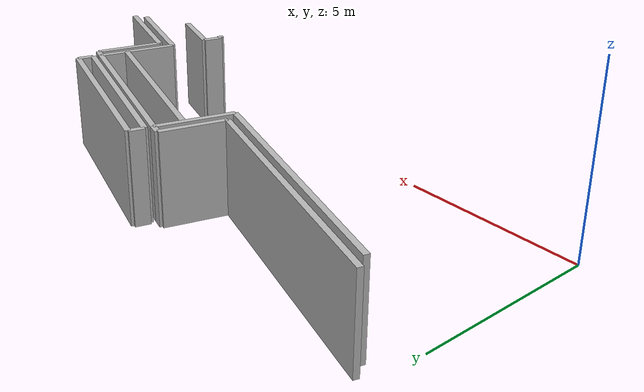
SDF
<?xml version="1.0" ?>
<sdf version="1.6">
  <model name="sps_0501">
    <pose frame="">0 0 0 0 -0 0</pose>
    <static>1</static>
    <self_collide>0</self_collide>
    <allow_auto_disable>0</allow_auto_disable>
    <link name="Wall90">
      <kinematic>0</kinematic>
      <gravity>1</gravity>
      <self_collide>0</self_collide>
      <collision name="collision">
        <geometry>
          <box>
            <size>4.94926 0.15 2.5</size>
          </box>
        </geometry>
        <pose frame="">0 0 0 0 -0 0</pose>
      </collision>
      <visual name="visual">
        <geometry>
          <box>
            <size>4.94926 0.15 2.5</size>
          </box>
        </geometry>
        <pose frame="">0 0 0 0 -0 0</pose>
        <cast_shadows>1</cast_shadows>
        <transparency>0.0</transparency>
      </visual>
      <pose frame="">9.86483 4.52669 1.25 0 0 -0.313514</pose>
    </link>
    <link name="Wall91">
      <kinematic>0</kinematic>
      <gravity>1</gravity>
      <self_collide>0</self_collide>
      <collision name="collision">
        <geometry>
          <box>
            <size>0.405746 0.15 2.5</size>
          </box>
        </geometry>
        <pose frame="">0 0 0 0 -0 0</pose>
      </collision>
      <visual name="visual">
        <geometry>
          <box>
            <size>0.405746 0.15 2.5</size>
          </box>
        </geometry>
        <pose frame="">0 0 0 0 -0 0</pose>
        <cast_shadows>1</cast_shadows>
        <transparency>0.0</transparency>
      </visual>
      <pose frame="">12.5778 4.8343 1.25 0 0 -1.89378</pose>
    </link>
    <link name="Wall483">
      <kinematic>0</kinematic>
      <gravity>1</gravity>
      <self_collide>0</self_collide>
      <collision name="collision">
        <geometry>
          <box>
            <size>4.96503 0.15 2.5</size>
          </box>
        </geometry>
        <pose frame="">0 0 0 0 -0 0</pose>
      </collision>
      <visual name="visual">
        <geometry>
          <box>
            <size>4.96503 0.15 2.5</size>
          </box>
        </geometry>
        <pose frame="">0 0 0 0 -0 0</pose>
        <cast_shadows>1</cast_shadows>
        <transparency>0.0</transparency>
      </visual>
      <pose frame="">10.1519 5.40752 1.25 0 0 -0.313505</pose>
    </link>
    <link name="Wall484">
      <kinematic>0</kinematic>
      <gravity>1</gravity>
      <self_collide>0</self_collide>
      <collision name="collision">
        <geometry>
          <box>
            <size>1.51377 0.15 2.5</size>
          </box>
        </geometry>
        <pose frame="">0 0 0 0 -0 0</pose>
      </collision>
      <visual name="visual">
        <geometry>
          <box>
            <size>1.51377 0.15 2.5</size>
          </box>
        </geometry>
        <pose frame="">0 0 0 0 -0 0</pose>
        <cast_shadows>1</cast_shadows>
        <transparency>0.0</transparency>
      </visual>
      <pose frame="">12.3254 1.37831 1.25 0 0 -0.313476</pose>
    </link>
    <link name="Wall809">
      <kinematic>0</kinematic>
      <gravity>1</gravity>
      <self_collide>0</self_collide>
      <collision name="collision">
        <geometry>
          <box>
            <size>1.69606 0.15 2.5</size>
          </box>
        </geometry>
        <pose frame="">0 0 0 0 -0 0</pose>
      </collision>
      <visual name="visual">
        <geometry>
          <box>
            <size>1.69606 0.15 2.5</size>
          </box>
        </geometry>
        <pose frame="">0 0 0 0 -0 0</pose>
        <cast_shadows>1</cast_shadows>
        <transparency>0.0</transparency>
      </visual>
      <pose frame="">7.17858 5.25398 1.25 0 -0 1.25732</pose>
    </link>
    <link name="Wall811">
      <kinematic>0</kinematic>
      <gravity>1</gravity>
      <self_collide>0</self_collide>
      <collision name="collision">
        <geometry>
          <box>
            <size>0.305144 0.15 2.5</size>
          </box>
        </geometry>
        <pose frame="">0 0 0 0 -0 0</pose>
      </collision>
      <visual name="visual">
        <geometry>
          <box>
            <size>0.305144 0.15 2.5</size>
          </box>
        </geometry>
        <pose frame="">0 0 0 0 -0 0</pose>
        <cast_shadows>1</cast_shadows>
        <transparency>0.0</transparency>
      </visual>
      <pose frame="">7.58626 6.01698 1.25 0 0 -0.290499</pose>
    </link>
    <link name="Wall813">
      <kinematic>0</kinematic>
      <gravity>1</gravity>
      <self_collide>0</self_collide>
      <collision name="collision">
        <geometry>
          <box>
            <size>0.395452 0.15 2.5</size>
          </box>
        </geometry>
        <pose frame="">0 0 0 0 -0 0</pose>
      </collision>
      <visual name="visual">
        <geometry>
          <box>
            <size>0.395452 0.15 2.5</size>
          </box>
        </geometry>
        <pose frame="">0 0 0 0 -0 0</pose>
        <cast_shadows>1</cast_shadows>
        <transparency>0.0</transparency>
      </visual>
      <pose frame="">7.85143 6.36119 1.25 0 0 -1.88444</pose>
    </link>
    <link name="Wall816">
      <kinematic>0</kinematic>
      <gravity>1</gravity>
      <self_collide>0</self_collide>
      <collision name="collision">
        <geometry>
          <box>
            <size>0.13791 0.15 2.5</size>
          </box>
        </geometry>
        <pose frame="">0 0 0 0 -0 0</pose>
      </collision>
      <visual name="visual">
        <geometry>
          <box>
            <size>0.13791 0.15 2.5</size>
          </box>
        </geometry>
        <pose frame="">0 0 0 0 -0 0</pose>
        <cast_shadows>1</cast_shadows>
        <transparency>0.0</transparency>
      </visual>
      <pose frame="">11.5195 1.12257 1.25 0 0 -0.314053</pose>
    </link>
    <link name="Wall1216">
      <kinematic>0</kinematic>
      <gravity>1</gravity>
      <self_collide>0</self_collide>
      <collision name="collision">
        <geometry>
          <box>
            <size>1.70277 0.15 2.5</size>
          </box>
        </geometry>
        <pose frame="">0 0 0 0 -0 0</pose>
      </collision>
      <visual name="visual">
        <geometry>
          <box>
            <size>1.70277 0.15 2.5</size>
          </box>
        </geometry>
        <pose frame="">0 0 0 0 -0 0</pose>
        <cast_shadows>1</cast_shadows>
        <transparency>0.0</transparency>
      </visual>
      <pose frame="">12.4652 3.52757 1.25 0 0 -1.88424</pose>
    </link>
    <link name="Wall1831">
      <kinematic>0</kinematic>
      <gravity>1</gravity>
      <self_collide>0</self_collide>
      <collision name="collision">
        <geometry>
          <box>
            <size>0.491769 0.15 2.5</size>
          </box>
        </geometry>
        <pose frame="">0 0 0 0 -0 0</pose>
      </collision>
      <visual name="visual">
        <geometry>
          <box>
            <size>0.491769 0.15 2.5</size>
          </box>
        </geometry>
        <pose frame="">0 0 0 0 -0 0</pose>
        <cast_shadows>1</cast_shadows>
        <transparency>0.0</transparency>
      </visual>
      <pose frame="">11.5297 1.37779 1.25 0 0 -1.88407</pose>
    </link>
    <link name="Wall1832">
      <kinematic>0</kinematic>
      <gravity>1</gravity>
      <self_collide>0</self_collide>
      <collision name="collision">
        <geometry>
          <box>
            <size>4.9568 0.15 2.5</size>
          </box>
        </geometry>
        <pose frame="">0 0 0 0 -0 0</pose>
      </collision>
      <visual name="visual">
        <geometry>
          <box>
            <size>4.9568 0.15 2.5</size>
          </box>
        </geometry>
        <pose frame="">0 0 0 0 -0 0</pose>
        <cast_shadows>1</cast_shadows>
        <transparency>0.0</transparency>
      </visual>
      <pose frame="">10.0896 5.20747 1.25 0 0 -0.314134</pose>
    </link>
    <link name="Wall1833">
      <kinematic>0</kinematic>
      <gravity>1</gravity>
      <self_collide>0</self_collide>
      <collision name="collision">
        <geometry>
          <box>
            <size>0.299699 0.15 2.5</size>
          </box>
        </geometry>
        <pose frame="">0 0 0 0 -0 0</pose>
      </collision>
      <visual name="visual">
        <geometry>
          <box>
            <size>0.299699 0.15 2.5</size>
          </box>
        </geometry>
        <pose frame="">0 0 0 0 -0 0</pose>
        <cast_shadows>1</cast_shadows>
        <transparency>0.0</transparency>
      </visual>
      <pose frame="">12.5872 4.38957 1.25 0 0 -0.355052</pose>
    </link>
    <link name="Wall2174">
      <kinematic>0</kinematic>
      <gravity>1</gravity>
      <self_collide>0</self_collide>
      <collision name="collision">
        <geometry>
          <box>
            <size>4.96883 0.15 2.5</size>
          </box>
        </geometry>
        <pose frame="">0 0 0 0 -0 0</pose>
      </collision>
      <visual name="visual">
        <geometry>
          <box>
            <size>4.96883 0.15 2.5</size>
          </box>
        </geometry>
        <pose frame="">0 0 0 0 -0 0</pose>
        <cast_shadows>1</cast_shadows>
        <transparency>0.0</transparency>
      </visual>
      <pose frame="">10.2773 5.78798 1.25 0 0 -0.311437</pose>
    </link>
    <link name="Wall2176">
      <kinematic>0</kinematic>
      <gravity>1</gravity>
      <self_collide>0</self_collide>
      <collision name="collision">
        <geometry>
          <box>
            <size>2.52068 0.15 2.5</size>
          </box>
        </geometry>
        <pose frame="">0 0 0 0 -0 0</pose>
      </collision>
      <visual name="visual">
        <geometry>
          <box>
            <size>2.52068 0.15 2.5</size>
          </box>
        </geometry>
        <pose frame="">0 0 0 0 -0 0</pose>
        <cast_shadows>1</cast_shadows>
        <transparency>0.0</transparency>
      </visual>
      <pose frame="">13.4016 2.32899 1.25 0 0 -0.313496</pose>
    </link>
    <link name="Wall2562">
      <kinematic>0</kinematic>
      <gravity>1</gravity>
      <self_collide>0</self_collide>
      <collision name="collision">
        <geometry>
          <box>
            <size>1.99967 0.15 2.5</size>
          </box>
        </geometry>
        <pose frame="">0 0 0 0 -0 0</pose>
      </collision>
      <visual name="visual">
        <geometry>
          <box>
            <size>1.99967 0.15 2.5</size>
          </box>
        </geometry>
        <pose frame="">0 0 0 0 -0 0</pose>
        <cast_shadows>1</cast_shadows>
        <transparency>0.0</transparency>
      </visual>
      <pose frame="">12.1383 3.49058 1.25 0 0 -1.88437</pose>
    </link>
    <link name="Wall19121">
      <kinematic>0</kinematic>
      <gravity>1</gravity>
      <self_collide>0</self_collide>
      <collision name="collision">
        <geometry>
          <box>
            <size>6.8972 0.15 2.5</size>
          </box>
        </geometry>
        <pose frame="">0 0 0 0 -0 0</pose>
      </collision>
      <visual name="visual">
        <geometry>
          <box>
            <size>6.8972 0.15 2.5</size>
          </box>
        </geometry>
        <pose frame="">0 0 0 0 -0 0</pose>
        <cast_shadows>1</cast_shadows>
        <transparency>0.0</transparency>
      </visual>
      <pose frame="">3.83517 5.13438 1.25 0 0 -0.313498</pose>
    </link>
    <link name="Wall19122">
      <kinematic>0</kinematic>
      <gravity>1</gravity>
      <self_collide>0</self_collide>
      <collision name="collision">
        <geometry>
          <box>
            <size>1.99988 0.15 2.5</size>
          </box>
        </geometry>
        <pose frame="">0 0 0 0 -0 0</pose>
      </collision>
      <visual name="visual">
        <geometry>
          <box>
            <size>1.99988 0.15 2.5</size>
          </box>
        </geometry>
        <pose frame="">0 0 0 0 -0 0</pose>
        <cast_shadows>1</cast_shadows>
        <transparency>0.0</transparency>
      </visual>
      <pose frame="">7.42406 5.02208 1.25 0 -0 1.25729</pose>
    </link>
    <link name="Wall27761">
      <kinematic>0</kinematic>
      <gravity>1</gravity>
      <self_collide>0</self_collide>
      <collision name="collision">
        <geometry>
          <box>
            <size>6.93258 0.15 2.5</size>
          </box>
        </geometry>
        <pose frame="">0 0 0 0 -0 0</pose>
      </collision>
      <visual name="visual">
        <geometry>
          <box>
            <size>6.93258 0.15 2.5</size>
          </box>
        </geometry>
        <pose frame="">0 0 0 0 -0 0</pose>
        <cast_shadows>1</cast_shadows>
        <transparency>0.0</transparency>
      </visual>
      <pose frame="">3.61977 5.51637 1.25 0 0 -0.313537</pose>
    </link>
    <link name="Wall27774">
      <kinematic>0</kinematic>
      <gravity>1</gravity>
      <self_collide>0</self_collide>
      <collision name="collision">
        <geometry>
          <box>
            <size>2.60582 0.15 2.5</size>
          </box>
        </geometry>
        <pose frame="">0 0 0 0 -0 0</pose>
      </collision>
      <visual name="visual">
        <geometry>
          <box>
            <size>2.60582 0.15 2.5</size>
          </box>
        </geometry>
        <pose frame="">0 0 0 0 -0 0</pose>
        <cast_shadows>1</cast_shadows>
        <transparency>0.0</transparency>
      </visual>
      <pose frame="">13.0693 2.13771 1.25 0 0 -0.313492</pose>
    </link>
  </model>
</sdf>
